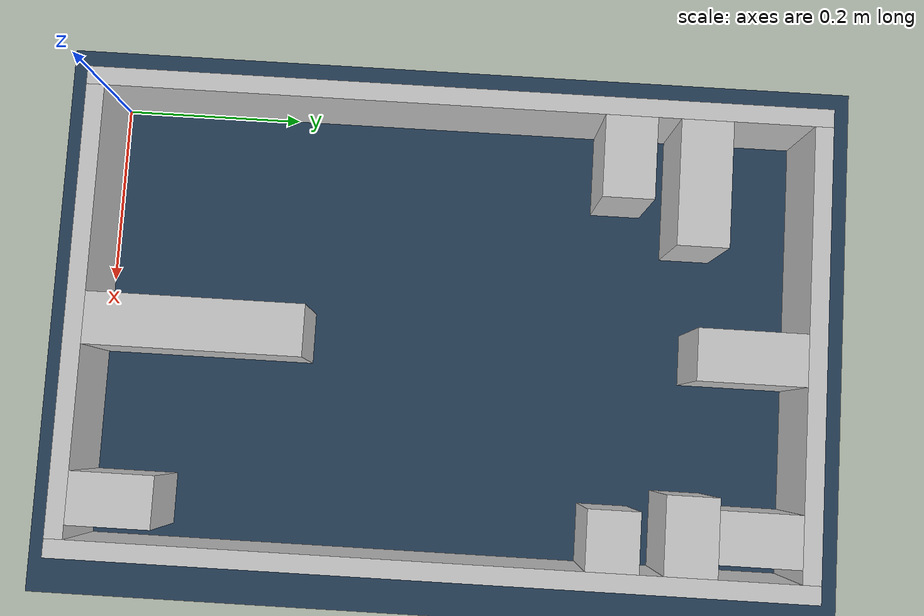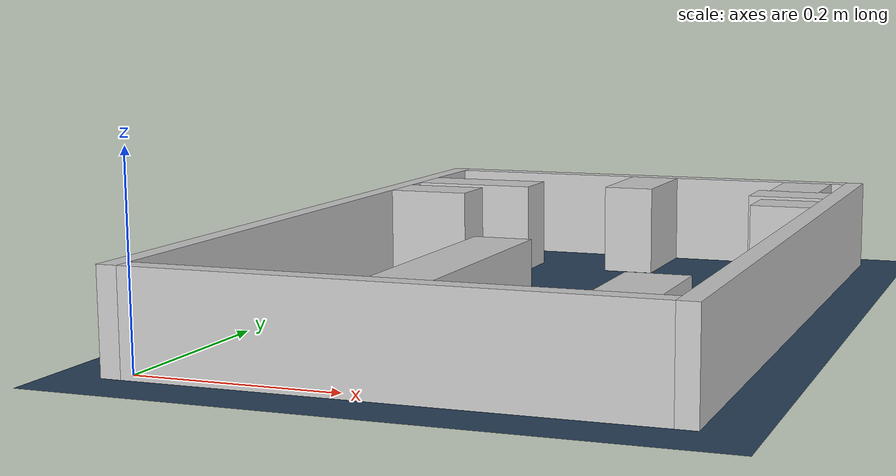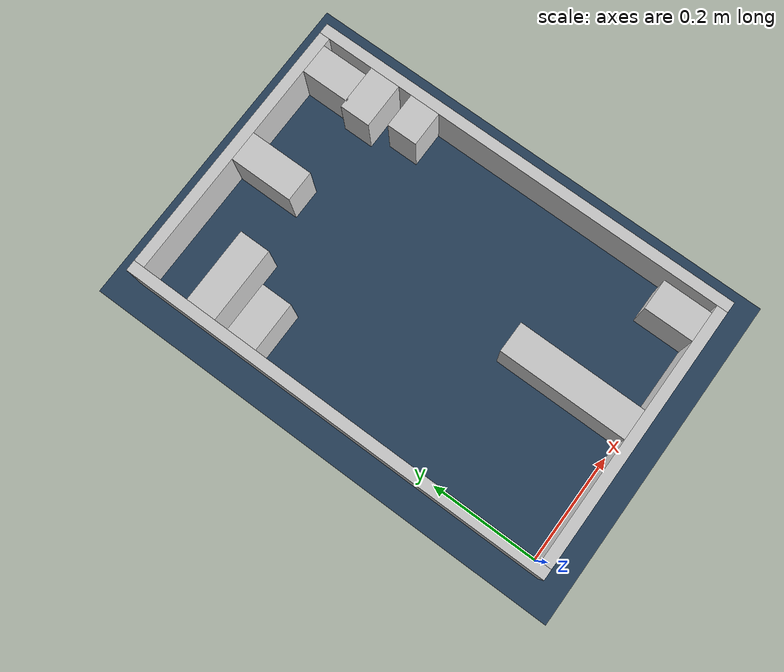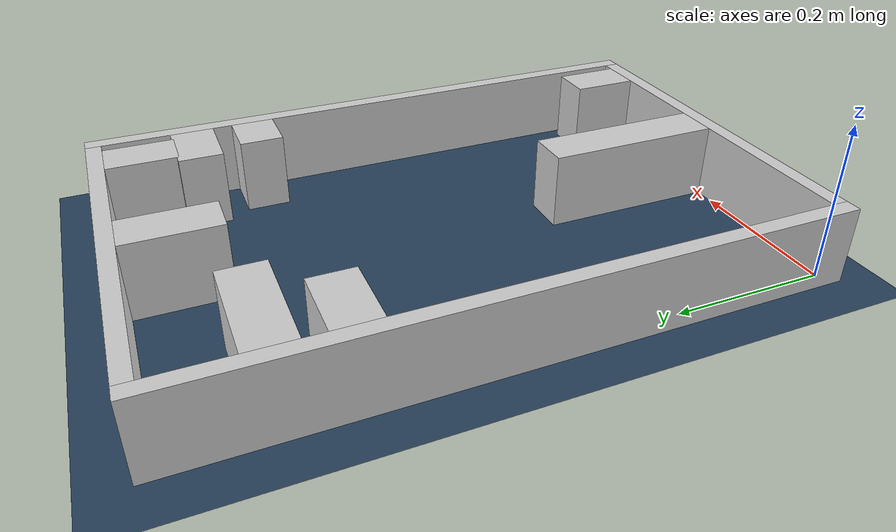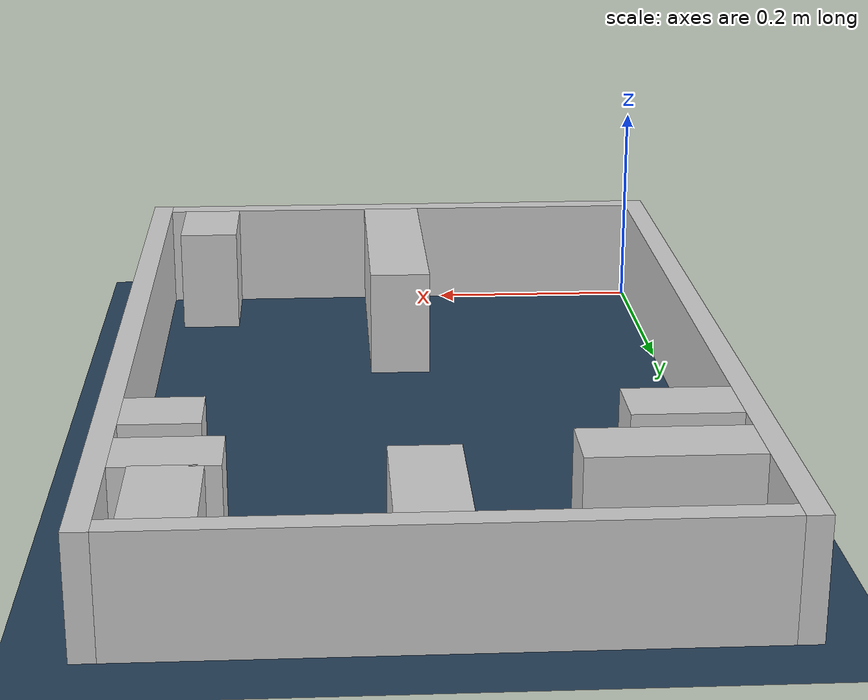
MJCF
<?xml version="1.0" ?>
<mujoco model="generated_real_template">
  <compiler angle="degree"/>
  <option timestep="0.002" integrator="implicitfast" iterations="100" cone="elliptic"/>
  <default>
    <geom density="1"/>
  </default>
  <asset>
    <texture builtin="gradient" height="3072" rgb1="0.3 0.5 0.7" rgb2="0 0 0" type="skybox" width="512"/>
    <texture builtin="checker" height="300" mark="edge" markrgb="0.8 0.8 0.8" name="groundplane" rgb1="0.2 0.3 0.4" rgb2="0.1 0.2 0.3" type="2d" width="300"/>
    <material name="groundplane" reflectance="0.2" texrepeat="5 5" texture="groundplane" texuniform="true"/>
  </asset>
  <worldbody>
    <light dir="0 0 -1" directional="true" pos="0 0 1.5"/>
    <geom name="floor" type="plane" condim="4" friction="0.5 0.005 0.001" material="groundplane" size="0 0 0.05"/>
    <body name="walls">
      <geom name="wall_boundary_left" type="box" condim="4" friction="1.0 0.005 0.0001" rgba="0.8 0.8 0.8 1" pos="-0.010000 0.387500 0.050000" euler="0 0 0.000000" size="0.010000 0.407500 0.050000"/>
      <geom name="wall_boundary_right" type="box" condim="4" friction="1.0 0.005 0.0001" rgba="0.8 0.8 0.8 1" pos="0.500000 0.387500 0.050000" euler="0 0 0.000000" size="0.010000 0.407500 0.050000"/>
      <geom name="wall_boundary_bottom" type="box" condim="4" friction="1.0 0.005 0.0001" rgba="0.8 0.8 0.8 1" pos="0.245000 -0.010000 0.050000" euler="0 0 0.000000" size="0.245000 0.010000 0.050000"/>
      <geom name="wall_boundary_top" type="box" condim="4" friction="1.0 0.005 0.0001" rgba="0.8 0.8 0.8 1" pos="0.245000 0.785000 0.050000" euler="0 0 0.000000" size="0.245000 0.010000 0.050000"/>
      <geom name="wall_inner_1_1" type="box" condim="4" friction="1.0 0.005 0.0001" rgba="0.8 0.8 0.8 1" pos="0.255178 0.117978 0.050000" euler="0 0 90.000000" size="0.117978 0.028500 0.050000"/>
      <geom name="wall_inner_1_2" type="box" condim="4" friction="1.0 0.005 0.0001" rgba="0.8 0.8 0.8 1" pos="0.255178 0.715795 0.050000" euler="0 0 90.000000" size="0.059205 0.028500 0.050000"/>
      <geom name="wall_inner_2_1" type="box" condim="4" friction="1.0 0.005 0.0001" rgba="0.8 0.8 0.8 1" pos="0.045436 0.575909 0.050000" euler="0 0 0.000000" size="0.045436 0.028500 0.050000"/>
      <geom name="wall_inner_2_2" type="box" condim="4" friction="1.0 0.005 0.0001" rgba="0.8 0.8 0.8 1" pos="0.457383 0.575909 0.050000" euler="0 0 0.000000" size="0.032617 0.028500 0.050000"/>
      <geom name="wall_inner_3_1" type="box" condim="4" friction="1.0 0.005 0.0001" rgba="0.8 0.8 0.8 1" pos="0.446521 0.045361 0.050000" euler="0 0 90.000000" size="0.045361 0.028500 0.050000"/>
      <geom name="wall_inner_3_2" type="box" condim="4" friction="1.0 0.005 0.0001" rgba="0.8 0.8 0.8 1" pos="0.446521 0.729644 0.050000" euler="0 0 90.000000" size="0.045356 0.028500 0.050000"/>
      <geom name="wall_inner_4_1" type="box" condim="4" friction="1.0 0.005 0.0001" rgba="0.8 0.8 0.8 1" pos="0.069622 0.658308 0.050000" euler="0 0 0.000000" size="0.069622 0.028500 0.050000"/>
      <geom name="wall_inner_4_2" type="box" condim="4" friction="1.0 0.005 0.0001" rgba="0.8 0.8 0.8 1" pos="0.447622 0.658308 0.050000" euler="0 0 0.000000" size="0.042378 0.028500 0.050000"/>
    </body>
  </worldbody>
</mujoco>
